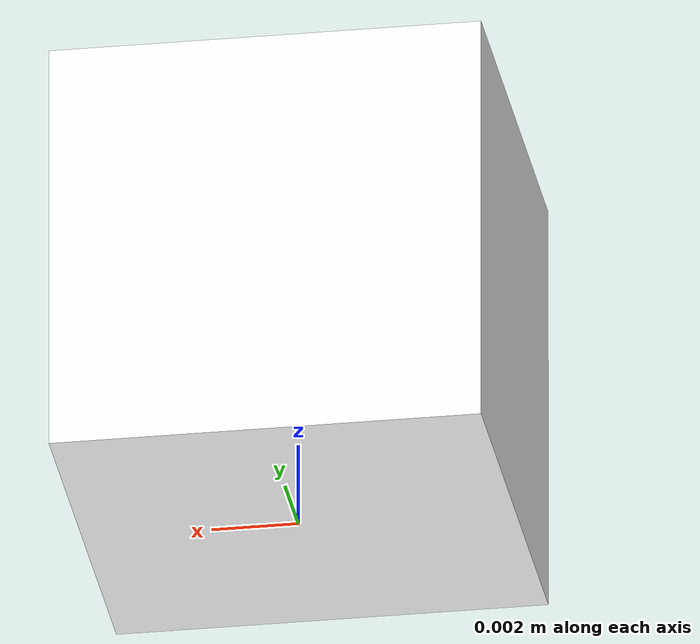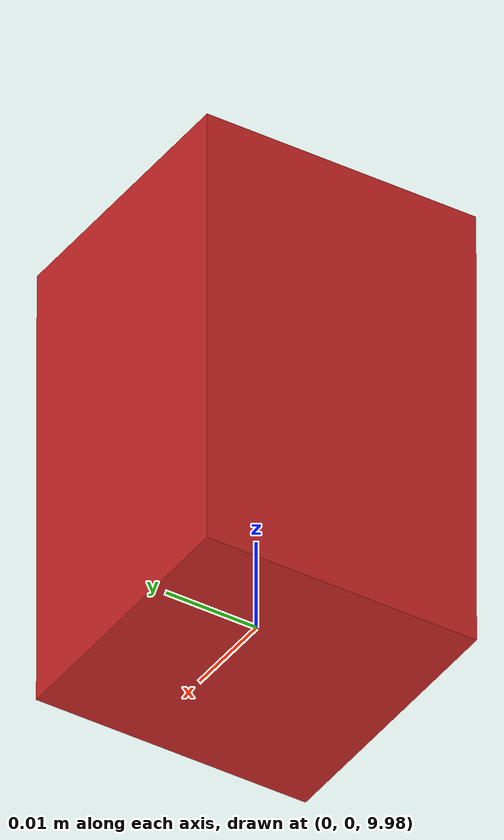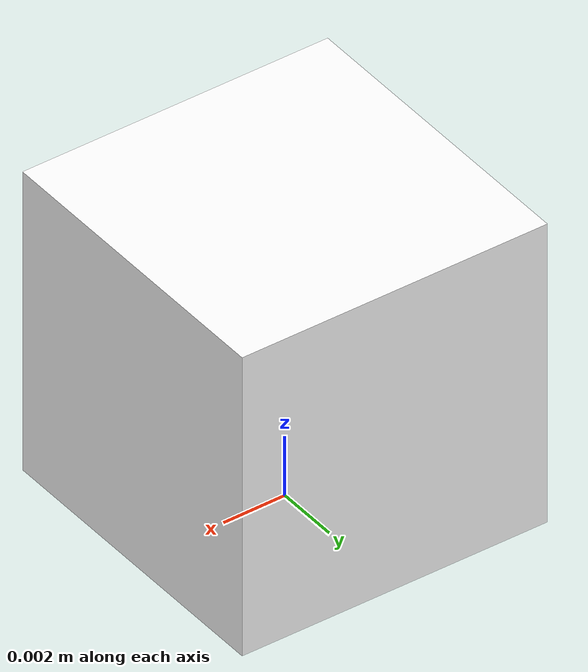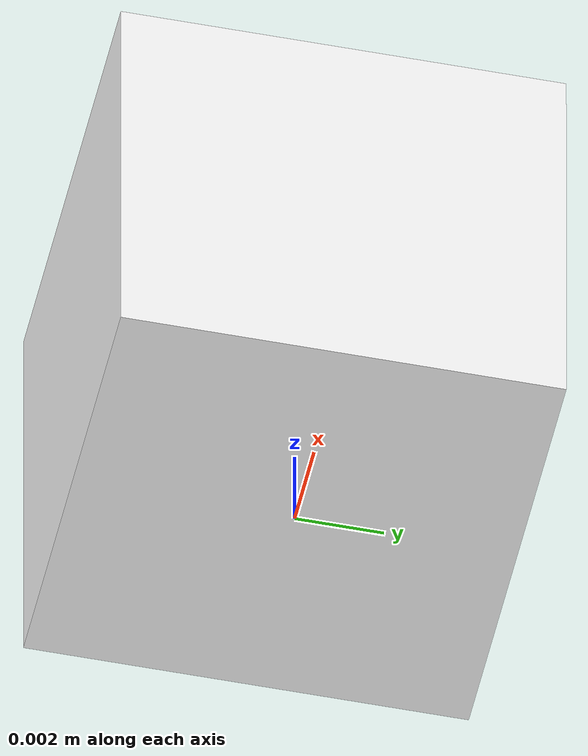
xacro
<?xml version="1.0"?>
<robot xmlns:xacro="http://www.ros.org/wiki/xacro" >

    <xacro:include filename="inertial_macros.xacro"/>

    <material name="white">
        <color rgba="1 1 1 1" />
    </material>

    <material name="orange">
        <color rgba="1 0.3 0.1 1"/>
    </material>

    <material name="blue">
        <color rgba="0.2 0.2 1 1"/>
    </material>

    <material name="black">
        <color rgba="0 0 0 1"/>
    </material>

    <material name="red">
        <color rgba="1 0 0 1"/>
    </material>

    <!-- BASE LINK -->

    <link name="base_link"></link>

    <!-- CHASSIS LINK -->

    <joint name="chassis_joint" type="fixed">
        <parent link="base_link"/>
        <child link="chassis"/>
        <origin xyz="0 0 0" rpy="0 0 0"/>
    </joint>

    <link name="chassis">
        <visual>
            <origin xyz="0 0 0.005"/>
            <geometry>
                <box size="0.01 0.01 0.01"/>
            </geometry>
            <material name="white"/>
        </visual>
        <collision>
            <origin xyz="0 0 0.005"/>
            <geometry>
                <box size="0.5 0.5 0.01"/>
            </geometry>
        </collision>
        <xacro:inertial_box mass="50" x="0.3" y="0.3" z="0.01">
            <origin xyz="0 0 0.005" rpy="0 0 0"/>
        </xacro:inertial_box>
    </link>

    <gazebo reference="chassis">
        <material>Gazebo/White</material>
    </gazebo>

    <link name="camera_link_uav">
        <visual>
            <geometry>
                <box size="0.05 0.03 0.03"/>
            </geometry>
        </visual>
    </link>

    <joint name="uav_joint" type="fixed">
        <parent link="base_link"/>
        <child link="camera_link_uav"/>
        <origin xyz="0 0 10" rpy="0 ${pi/2} 0"/>
    </joint>

    <link name="camera_link_optical_uav"></link>

    <joint name="camera_optical_joint_uav" type="fixed">
        <parent link="camera_link_uav" />
        <child link="camera_link_optical_uav" />
        <origin xyz="0 0 0" rpy="0 0 0" />
    </joint>

    <gazebo reference="camera_link_uav">
        <material>Gazebo/Red</material>
        <sensor name="camera_uav" type="depth">
            <pose> 0 0 0 0 0 0 </pose>
            <visualize>true</visualize>
            <update_rate>1</update_rate>
            <camera>
                <horizontal_fov>1.25</horizontal_fov>
                <image>
                    <format>B8G8R8</format>
                    <width>1000</width>
                    <height>1000</height>
                </image>
                <clip>
                    <near>0.05</near>
                    <far>15.0</far>
                </clip>
            </camera>
            <plugin name="uav_camera_controller" filename="libgazebo_ros_camera.so">
                <frame_name>camera_link_optical_uav</frame_name>
                <min_depth>0.1</min_depth>
                <max_depth>100.0</max_depth>
            </plugin>
        </sensor>
    </gazebo>

</robot>
